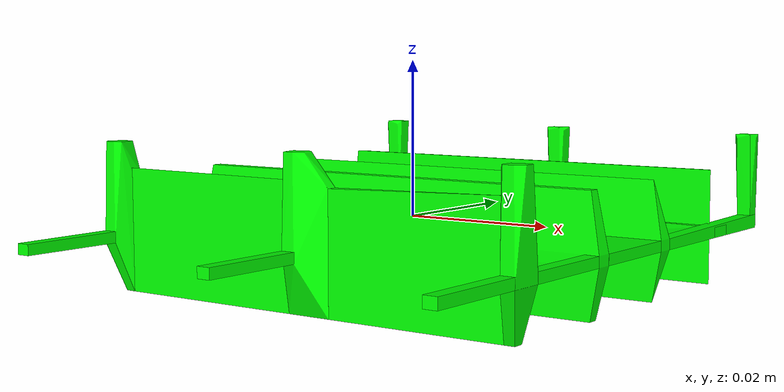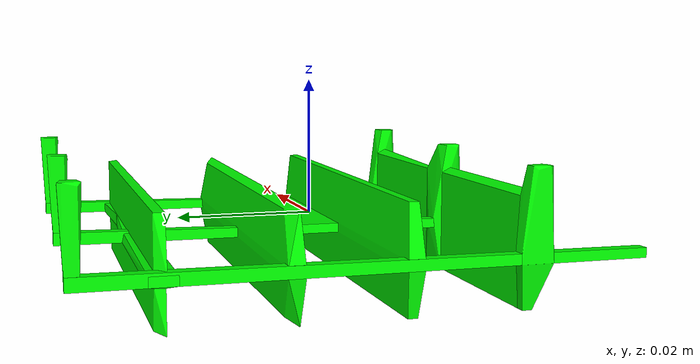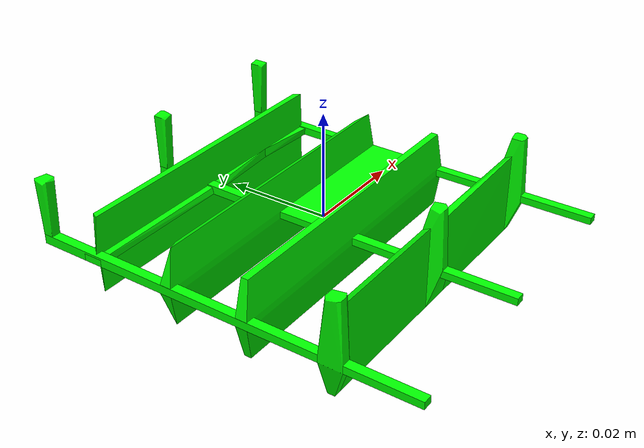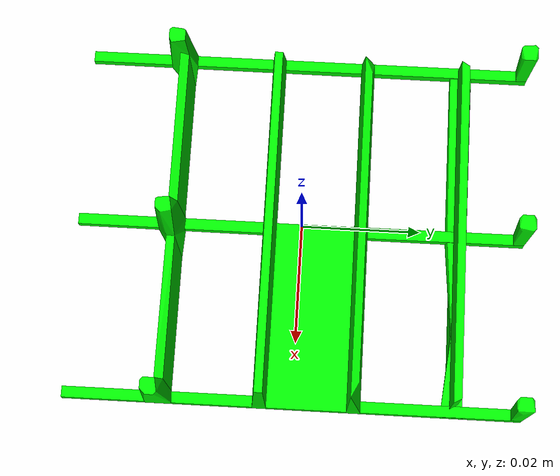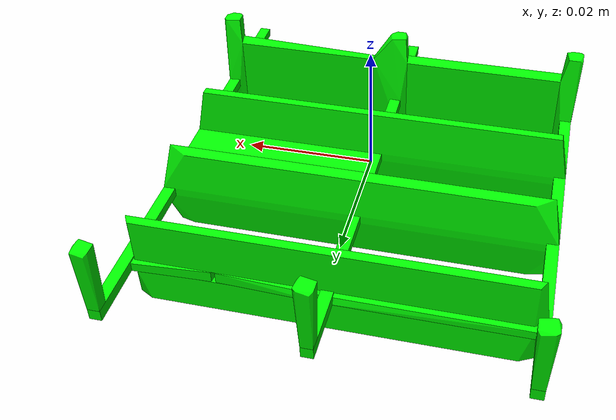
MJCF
<mujoco model="shapenet4-7">
  <asset>
    <mesh file="meshes/shapenet4-7/shapenet4-7_0.stl" name="shapenet4-7_0" scale="0.1 0.1 0.1"/>
    <mesh file="meshes/shapenet4-7/shapenet4-7_1.stl" name="shapenet4-7_1" scale="0.1 0.1 0.1"/>
    <mesh file="meshes/shapenet4-7/shapenet4-7_2.stl" name="shapenet4-7_2" scale="0.1 0.1 0.1"/>
    <mesh file="meshes/shapenet4-7/shapenet4-7_3.stl" name="shapenet4-7_3" scale="0.1 0.1 0.1"/>
    <mesh file="meshes/shapenet4-7/shapenet4-7_4.stl" name="shapenet4-7_4" scale="0.1 0.1 0.1"/>
    <mesh file="meshes/shapenet4-7/shapenet4-7_5.stl" name="shapenet4-7_5" scale="0.1 0.1 0.1"/>
    <mesh file="meshes/shapenet4-7/shapenet4-7_6.stl" name="shapenet4-7_6" scale="0.1 0.1 0.1"/>
    <mesh file="meshes/shapenet4-7/shapenet4-7_7.stl" name="shapenet4-7_7" scale="0.1 0.1 0.1"/>
    <mesh file="meshes/shapenet4-7/shapenet4-7_8.stl" name="shapenet4-7_8" scale="0.1 0.1 0.1"/>
    <mesh file="meshes/shapenet4-7/shapenet4-7_9.stl" name="shapenet4-7_9" scale="0.1 0.1 0.1"/>
    <mesh file="meshes/shapenet4-7/shapenet4-7_10.stl" name="shapenet4-7_10" scale="0.1 0.1 0.1"/>
    <mesh file="meshes/shapenet4-7/shapenet4-7_11.stl" name="shapenet4-7_11" scale="0.1 0.1 0.1"/>
    <mesh file="meshes/shapenet4-7/shapenet4-7_12.stl" name="shapenet4-7_12" scale="0.1 0.1 0.1"/>
    <mesh file="meshes/shapenet4-7/shapenet4-7_13.stl" name="shapenet4-7_13" scale="0.1 0.1 0.1"/>
    <mesh file="meshes/shapenet4-7/shapenet4-7_14.stl" name="shapenet4-7_14" scale="0.1 0.1 0.1"/>
    <mesh file="meshes/shapenet4-7/shapenet4-7_15.stl" name="shapenet4-7_15" scale="0.1 0.1 0.1"/>
    <mesh file="meshes/shapenet4-7/shapenet4-7_16.stl" name="shapenet4-7_16" scale="0.1 0.1 0.1"/>
    <mesh file="meshes/shapenet4-7/shapenet4-7_17.stl" name="shapenet4-7_17" scale="0.1 0.1 0.1"/>
    <mesh file="meshes/shapenet4-7/shapenet4-7_18.stl" name="shapenet4-7_18" scale="0.1 0.1 0.1"/>
    <mesh file="meshes/shapenet4-7/shapenet4-7_19.stl" name="shapenet4-7_19" scale="0.1 0.1 0.1"/>
  </asset>
  <worldbody>
    <body>
      <body name="collision">
        <geom pos="0 0 0" mesh="shapenet4-7_0" type="mesh" solimp="0.998 0.998 0.001" solref="0.001 1" density="100" friction="0.95 0.3 0.1" rgba="0 1 0 1" group="1" condim="4"/>
        <geom pos="0 0 0" mesh="shapenet4-7_1" type="mesh" solimp="0.998 0.998 0.001" solref="0.001 1" density="100" friction="0.95 0.3 0.1" rgba="0 1 0 1" group="1" condim="4"/>
        <geom pos="0 0 0" mesh="shapenet4-7_2" type="mesh" solimp="0.998 0.998 0.001" solref="0.001 1" density="100" friction="0.95 0.3 0.1" rgba="0 1 0 1" group="1" condim="4"/>
        <geom pos="0 0 0" mesh="shapenet4-7_3" type="mesh" solimp="0.998 0.998 0.001" solref="0.001 1" density="100" friction="0.95 0.3 0.1" rgba="0 1 0 1" group="1" condim="4"/>
        <geom pos="0 0 0" mesh="shapenet4-7_4" type="mesh" solimp="0.998 0.998 0.001" solref="0.001 1" density="100" friction="0.95 0.3 0.1" rgba="0 1 0 1" group="1" condim="4"/>
        <geom pos="0 0 0" mesh="shapenet4-7_5" type="mesh" solimp="0.998 0.998 0.001" solref="0.001 1" density="100" friction="0.95 0.3 0.1" rgba="0 1 0 1" group="1" condim="4"/>
        <geom pos="0 0 0" mesh="shapenet4-7_6" type="mesh" solimp="0.998 0.998 0.001" solref="0.001 1" density="100" friction="0.95 0.3 0.1" rgba="0 1 0 1" group="1" condim="4"/>
        <geom pos="0 0 0" mesh="shapenet4-7_7" type="mesh" solimp="0.998 0.998 0.001" solref="0.001 1" density="100" friction="0.95 0.3 0.1" rgba="0 1 0 1" group="1" condim="4"/>
        <geom pos="0 0 0" mesh="shapenet4-7_8" type="mesh" solimp="0.998 0.998 0.001" solref="0.001 1" density="100" friction="0.95 0.3 0.1" rgba="0 1 0 1" group="1" condim="4"/>
        <geom pos="0 0 0" mesh="shapenet4-7_9" type="mesh" solimp="0.998 0.998 0.001" solref="0.001 1" density="100" friction="0.95 0.3 0.1" rgba="0 1 0 1" group="1" condim="4"/>
        <geom pos="0 0 0" mesh="shapenet4-7_10" type="mesh" solimp="0.998 0.998 0.001" solref="0.001 1" density="100" friction="0.95 0.3 0.1" rgba="0 1 0 1" group="1" condim="4"/>
        <geom pos="0 0 0" mesh="shapenet4-7_11" type="mesh" solimp="0.998 0.998 0.001" solref="0.001 1" density="100" friction="0.95 0.3 0.1" rgba="0 1 0 1" group="1" condim="4"/>
        <geom pos="0 0 0" mesh="shapenet4-7_12" type="mesh" solimp="0.998 0.998 0.001" solref="0.001 1" density="100" friction="0.95 0.3 0.1" rgba="0 1 0 1" group="1" condim="4"/>
        <geom pos="0 0 0" mesh="shapenet4-7_13" type="mesh" solimp="0.998 0.998 0.001" solref="0.001 1" density="100" friction="0.95 0.3 0.1" rgba="0 1 0 1" group="1" condim="4"/>
        <geom pos="0 0 0" mesh="shapenet4-7_14" type="mesh" solimp="0.998 0.998 0.001" solref="0.001 1" density="100" friction="0.95 0.3 0.1" rgba="0 1 0 1" group="1" condim="4"/>
        <geom pos="0 0 0" mesh="shapenet4-7_15" type="mesh" solimp="0.998 0.998 0.001" solref="0.001 1" density="100" friction="0.95 0.3 0.1" rgba="0 1 0 1" group="1" condim="4"/>
        <geom pos="0 0 0" mesh="shapenet4-7_16" type="mesh" solimp="0.998 0.998 0.001" solref="0.001 1" density="100" friction="0.95 0.3 0.1" rgba="0 1 0 1" group="1" condim="4"/>
        <geom pos="0 0 0" mesh="shapenet4-7_17" type="mesh" solimp="0.998 0.998 0.001" solref="0.001 1" density="100" friction="0.95 0.3 0.1" rgba="0 1 0 1" group="1" condim="4"/>
        <geom pos="0 0 0" mesh="shapenet4-7_18" type="mesh" solimp="0.998 0.998 0.001" solref="0.001 1" density="100" friction="0.95 0.3 0.1" rgba="0 1 0 1" group="1" condim="4"/>
        <geom pos="0 0 0" mesh="shapenet4-7_19" type="mesh" solimp="0.998 0.998 0.001" solref="0.001 1" density="100" friction="0.95 0.3 0.1" rgba="0 1 0 1" group="1" condim="4"/>
      </body>
      <body name="visual">
        <geom pos="0 0 0" mesh="shapenet4-7_0" type="mesh" rgba="0 1 0 1" conaffinity="0" contype="0" group="0" mass="0.0001"/>
        <geom pos="0 0 0" mesh="shapenet4-7_1" type="mesh" rgba="0 1 0 1" conaffinity="0" contype="0" group="0" mass="0.0001"/>
        <geom pos="0 0 0" mesh="shapenet4-7_2" type="mesh" rgba="0 1 0 1" conaffinity="0" contype="0" group="0" mass="0.0001"/>
        <geom pos="0 0 0" mesh="shapenet4-7_3" type="mesh" rgba="0 1 0 1" conaffinity="0" contype="0" group="0" mass="0.0001"/>
        <geom pos="0 0 0" mesh="shapenet4-7_4" type="mesh" rgba="0 1 0 1" conaffinity="0" contype="0" group="0" mass="0.0001"/>
        <geom pos="0 0 0" mesh="shapenet4-7_5" type="mesh" rgba="0 1 0 1" conaffinity="0" contype="0" group="0" mass="0.0001"/>
        <geom pos="0 0 0" mesh="shapenet4-7_6" type="mesh" rgba="0 1 0 1" conaffinity="0" contype="0" group="0" mass="0.0001"/>
        <geom pos="0 0 0" mesh="shapenet4-7_7" type="mesh" rgba="0 1 0 1" conaffinity="0" contype="0" group="0" mass="0.0001"/>
        <geom pos="0 0 0" mesh="shapenet4-7_8" type="mesh" rgba="0 1 0 1" conaffinity="0" contype="0" group="0" mass="0.0001"/>
        <geom pos="0 0 0" mesh="shapenet4-7_9" type="mesh" rgba="0 1 0 1" conaffinity="0" contype="0" group="0" mass="0.0001"/>
        <geom pos="0 0 0" mesh="shapenet4-7_10" type="mesh" rgba="0 1 0 1" conaffinity="0" contype="0" group="0" mass="0.0001"/>
        <geom pos="0 0 0" mesh="shapenet4-7_11" type="mesh" rgba="0 1 0 1" conaffinity="0" contype="0" group="0" mass="0.0001"/>
        <geom pos="0 0 0" mesh="shapenet4-7_12" type="mesh" rgba="0 1 0 1" conaffinity="0" contype="0" group="0" mass="0.0001"/>
        <geom pos="0 0 0" mesh="shapenet4-7_13" type="mesh" rgba="0 1 0 1" conaffinity="0" contype="0" group="0" mass="0.0001"/>
        <geom pos="0 0 0" mesh="shapenet4-7_14" type="mesh" rgba="0 1 0 1" conaffinity="0" contype="0" group="0" mass="0.0001"/>
        <geom pos="0 0 0" mesh="shapenet4-7_15" type="mesh" rgba="0 1 0 1" conaffinity="0" contype="0" group="0" mass="0.0001"/>
        <geom pos="0 0 0" mesh="shapenet4-7_16" type="mesh" rgba="0 1 0 1" conaffinity="0" contype="0" group="0" mass="0.0001"/>
        <geom pos="0 0 0" mesh="shapenet4-7_17" type="mesh" rgba="0 1 0 1" conaffinity="0" contype="0" group="0" mass="0.0001"/>
        <geom pos="0 0 0" mesh="shapenet4-7_18" type="mesh" rgba="0 1 0 1" conaffinity="0" contype="0" group="0" mass="0.0001"/>
        <geom pos="0 0 0" mesh="shapenet4-7_19" type="mesh" rgba="0 1 0 1" conaffinity="0" contype="0" group="0" mass="0.0001"/>
      </body>
      <site rgba="0 0 0 0" size="0.005" pos="0 0 -0.06" name="bottom_site"/>
      <site rgba="0 0 0 0" size="0.005" pos="0 0 0.04" name="top_site"/>
      <site rgba="0 0 0 0" size="0.005" pos="0.025 0.025 0" name="horizontal_radius_site"/>
    </body>
  </worldbody>
</mujoco>
